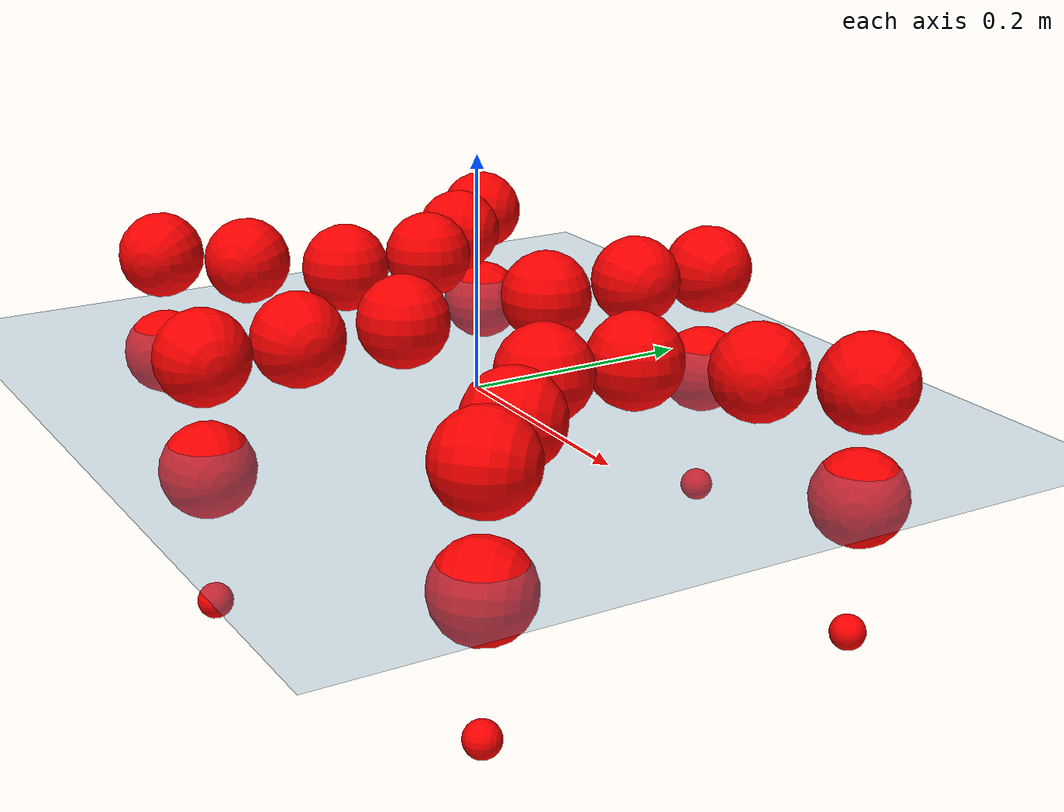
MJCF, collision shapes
<mujoco model="Golem">
  <compiler angle="radian" assetdir="assets" balanceinertia="true" inertiafromgeom="false"/>

  <option timestep="0.005" density="1.2" viscosity="2e-05"/>

  <size nkey="1"/>

  <visual>
    <quality shadowsize="8192"/>
    <map shadowclip="0.5"/>
  </visual>

  <default>
    <default class="/">
      <joint armature="0.01" damping="0.01" frictionloss="0.01"/>
      <geom contype="0" conaffinity="0" group="1" solref="-1000 -80"/>
      <site size="0.01 0.005 0.005" group="5"/>
      <general forcelimited="true" biastype="affine" gainprm="25" biasprm="0 -25 -0.5"/>
      <default class="visual">
        <geom type="mesh" group="2"/>
      </default>
      <default class="collision">
        <geom group="3"/>
      </default>
      <default class="foot">
        <geom size="0.01 0 0" condim="6" group="4" priority="1" solimp="0.015 1 0.01"/>
      </default>
      <default class="reward_collision_sphere">
        <geom group="5" rgba="1 0 0 1"/>
      </default>
    </default>
  </default>

  <asset>
    <texture type="skybox" colorspace="auto" name="//unnamed_texture_0" builtin="gradient" rgb1="0.95 0.95 0.95" rgb2="0.95 0.95 0.95" width="100" height="600"/>
    <texture type="2d" colorspace="auto" name="texplane" builtin="checker" rgb1="0.345 0.575 0.748" rgb2="0.345 0.575 0.748" markrgb="1 1 1" width="512" height="512"/>
    <material name="MatPlane" class="/" texture="texplane" texuniform="true" texrepeat="2 2" specular="0.9"/>
    <mesh name="body" class="/" file="body.stl" scale="0.001 0.001 0.001"/>
    <mesh name="coxa" class="/" file="coxa.stl" scale="0.001 0.001 0.001"/>
    <mesh name="femur" class="/" file="femur.stl" scale="0.001 0.001 0.001"/>
    <mesh name="tibia" class="/" file="tibia.stl" scale="0.001 0.001 0.001"/>
    <mesh name="tarsus" class="/" file="tarsus.stl" scale="0.001 0.001 0.001"/>
  </asset>

  <worldbody>
    <geom name="floor" class="/" size="100 100 0.125" type="plane" group="0" material="MatPlane"/>
    <light name="toplight_shadow" class="/" pos="0 0 5" dir="0.0990148 0.0990148 -0.990148" type="directional" ambient="0.04 0.04 0.04" diffuse="0.55 0.55 0.55" specular="0.12 0.12 0.12"/>
    <light name="toplight_fill" class="/" pos="0 0 5" dir="0.0990148 0.0990148 -0.990148" type="directional" castshadow="false" ambient="0.04 0.04 0.04" diffuse="0.3 0.3 0.3" specular="0.08 0.08 0.08"/>
    <body name="trunk" pos="0.00157141 -0.000586941 -0.000794785" quat="1 -5.06064e-06 4.22094e-05 -7.42362e-06">
      <inertial pos="6.61304e-05 -1.7462e-06 -0.00319603" quat="0.999999 -0.000457191 -0.00129807 -0.000374178" mass="3.37857" diaginertia="0.0138782 0.00245218 0.0163295"/>
      <joint name="//unnamed_joint_0" type="free"/>
      <geom name="//unnamed_geom_1" class="/" pos="0 0 0.0706781" quat="1 0 0 0" type="mesh" rgba="0.9 0.9 0.9 1" mesh="body"/>
      <site name="imu" class="/" pos="0.145219 0.00524707 0.107329" size="0.00977686"/>
      <camera name="track" class="/" pos="0 -1.51852 0" quat="0.707107 0.707107 0 0" mode="trackcom"/>
      <camera name="ego_camera" class="/" pos="0.139029 0 0.110434" quat="-0.5 -0.5 0.5 0.5"/>
      <body name="coxa_RR" pos="-0.19106 -0.0635515 0.0701596" quat="0.382653 0.00034893 2.36785e-05 -0.923892">
        <inertial pos="3.34775e-06 -0.00174272 0.00157199" quat="1 -6.98594e-07 -5.28921e-06 -1.2257e-06" mass="0.183115" diaginertia="0.0140359 0.00252827 0.0164018"/>
        <joint name="coxa_joint_RR" class="/" pos="0 0 0" axis="-0.00183981 -0.00682896 -0.999975" range="-3.13899 3.14184" armature="0.00942386" damping="0" frictionloss="0.0098149"/>
        <geom name="//unnamed_geom_2" class="/" type="mesh" rgba="0.2 0.2 0.2 1" mesh="coxa"/>
        <geom name="//unnamed_geom_3" class="reward_collision_sphere" size="0.0391074" pos="-0.0320835 0 0"/>
        <body name="femur_RR" pos="0.0625248 0.000717094 -0.000537423" quat="0.500012 -0.49991 0.499938 0.500141">
          <inertial pos="0.000954105 0.000861324 0.00031237" quat="0.999994 0.000717153 -0.00275733 -0.00190087" mass="0.187125" diaginertia="0.0139919 0.00250654 0.0168528"/>
          <joint name="femur_joint_RR" class="/" pos="0 0 0" axis="-0.00169704 0.00334505 -0.999993" range="-3.15943 3.14003" armature="0.00996932" damping="0" frictionloss="0.0101369"/>
          <geom name="//unnamed_geom_4" class="/" type="mesh" rgba="0.9 0.9 0.9 1" mesh="femur"/>
          <geom name="//unnamed_geom_5" class="reward_collision_sphere" size="0.0391074"/>
          <body name="tibia_RR" pos="2.5695e-05 -0.0843359 0.00217889" quat="0.000408899 1 -0.000275904 -0.000584954">
            <inertial pos="-0.000939623 0.000262511 0.000143114" quat="0.999999 -0.000895313 0.00064459 0.00113083" mass="0.189164" diaginertia="0.0139995 0.00255577 0.0166282"/>
            <joint name="tibia_joint_RR" class="/" pos="0 0 0" axis="7.95972e-05 0.00326534 0.999995" range="-3.15907 3.12881" armature="0.00959885" damping="0.00319357" frictionloss="0.00979336"/>
            <geom name="//unnamed_geom_6" class="/" type="mesh" rgba="0.2 0.2 0.2 1" mesh="tibia"/>
            <geom name="//unnamed_geom_7" class="reward_collision_sphere" size="0.0391074"/>
            <body name="tarsus_RR" pos="0.094461 0.0013635 0.000757128" quat="1 1.36901e-05 2.04523e-08 4.04304e-07">
              <inertial pos="0.0663334 0.000406986 -0.00100187" quat="0.499579 0.499812 0.501403 0.499203" mass="0.186043" diaginertia="0.0138637 0.0024841 0.0162841"/>
              <joint name="tarsus_joint_RR" class="/" pos="0 0 0" axis="0.00621621 -0.00498661 0.999968" stiffness="0.00240782" range="-3.15702 3.13166" armature="0.0100044" damping="0.0394095" frictionloss="0.0102351"/>
              <geom name="//unnamed_geom_8" class="/" type="mesh" rgba="0.9 0.9 0.9 1" mesh="tarsus"/>
              <geom name="foot_1" class="foot" size="0.00963176" pos="0.119779 0 0" quat="0 -0.707107 0 0.707107"/>
              <geom name="//unnamed_geom_10" class="reward_collision_sphere" size="0.0391074"/>
              <geom name="//unnamed_geom_11" class="reward_collision_sphere" size="0.0146653" pos="0.114966 0 0"/>
              <site name="foot_1" class="foot" pos="0.119779 0 0" quat="0 -0.707107 0 0.707107" size="0.00977686"/>
            </body>
          </body>
        </body>
      </body>
      <body name="coxa_RM" pos="-0.000373222 -0.101744 0.0707654" quat="0.70709 0.000167304 9.70825e-05 -0.707124">
        <inertial pos="0.000297254 0.000114578 0.00165817" quat="0.999988 0.00223745 0.00235429 0.00362688" mass="0.189541" diaginertia="0.0141584 0.0024739 0.0164114"/>
        <joint name="coxa_joint_RM" class="/" pos="0 0 0" axis="-0.00320424 -0.000363558 -0.999995" range="-3.11954 3.14421" armature="0.00967429" damping="0.00693383" frictionloss="0.00876401"/>
        <geom name="//unnamed_geom_12" class="/" type="mesh" rgba="0.2 0.2 0.2 1" mesh="coxa"/>
        <geom name="//unnamed_geom_13" class="reward_collision_sphere" size="0.0391074" pos="-0.0320835 0 0"/>
        <body name="femur_RM" pos="0.0619233 7.24497e-05 2.14275e-05" quat="0.500285 -0.499736 0.500402 0.499577">
          <inertial pos="-0.000177573 0.000788398 0.000158799" quat="0.99999 -0.000877155 -0.00305153 0.00305516" mass="0.191485" diaginertia="0.0143132 0.00256067 0.0168055"/>
          <joint name="femur_joint_RM" class="/" pos="0 0 0" axis="-0.00331045 0.000952864 -0.999994" range="-3.1312 3.13916" armature="0.0102514" damping="0.0103208" frictionloss="0.00973575"/>
          <geom name="//unnamed_geom_14" class="/" type="mesh" rgba="0.9 0.9 0.9 1" mesh="femur"/>
          <geom name="//unnamed_geom_15" class="reward_collision_sphere" size="0.0391074"/>
          <body name="tibia_RM" pos="0.00076534 -0.0810494 0.00116011" quat="-8.95649e-05 1 -9.11511e-05 -5.87571e-05">
            <inertial pos="-6.96913e-05 -0.00190763 -0.00025654" quat="0.999984 0.00257137 -0.00501451 0.000253665" mass="0.186685" diaginertia="0.0141954 0.00261098 0.0165305"/>
            <joint name="tibia_joint_RM" class="/" pos="0 0 0" axis="-0.000979817 -0.000372733 0.999999" range="-3.16253 3.18001" armature="0.00972057" damping="0.0122237" frictionloss="0.00970291"/>
            <geom name="//unnamed_geom_16" class="/" type="mesh" rgba="0.2 0.2 0.2 1" mesh="tibia"/>
            <geom name="//unnamed_geom_17" class="reward_collision_sphere" size="0.0391074"/>
            <body name="tarsus_RM" pos="0.0936366 0.000283375 0.000290066" quat="1 0.000106992 -9.40282e-05 -2.98691e-05">
              <inertial pos="0.0638397 0.000752039 0.000580524" quat="0.497928 0.503028 0.494131 0.504841" mass="0.190667" diaginertia="0.0138006 0.00253947 0.016326"/>
              <joint name="tarsus_joint_RM" class="/" pos="0 0 0" axis="0.000420669 -0.000109164 1" range="-3.1469 3.14871" armature="0.00928724" damping="0.00626648" frictionloss="0.00978478"/>
              <geom name="//unnamed_geom_18" class="/" type="mesh" rgba="0.9 0.9 0.9 1" mesh="tarsus"/>
              <geom name="foot_2" class="foot" size="0.00962297" pos="0.119779 0 0" quat="0 -0.707107 0 0.707107"/>
              <geom name="//unnamed_geom_20" class="reward_collision_sphere" size="0.0391074"/>
              <geom name="//unnamed_geom_21" class="reward_collision_sphere" size="0.0146653" pos="0.114966 0 0"/>
              <site name="foot_2" class="foot" pos="0.119779 0 0" quat="0 -0.707107 0 0.707107" size="0.00977686"/>
            </body>
          </body>
        </body>
      </body>
      <body name="coxa_RF" pos="0.190964 -0.0615229 0.0725157" quat="0.923977 -0.000209537 0.000131479 -0.382448">
        <inertial pos="0.000746215 -0.000788539 -3.07566e-05" quat="1 6.80329e-06 -3.94259e-05 6.95065e-05" mass="0.188005" diaginertia="0.0139752 0.00250783 0.0167206"/>
        <joint name="coxa_joint_RF" class="/" pos="0 0 0" axis="-0.00386111 0.00308389 -0.999988" range="-3.14348 3.13253" armature="0.0101678" damping="0.0130758" frictionloss="0.00987648"/>
        <geom name="//unnamed_geom_22" class="/" type="mesh" rgba="0.2 0.2 0.2 1" mesh="coxa"/>
        <geom name="//unnamed_geom_23" class="reward_collision_sphere" size="0.0391074" pos="-0.0320835 0 0"/>
        <body name="femur_RF" pos="0.0629644 0.000478739 -0.00182504" quat="0.500338 -0.499934 0.499852 0.499875">
          <inertial pos="-0.000852597 0.00011825 -0.000180126" quat="0.999988 -0.0034538 -0.000959056 0.0034118" mass="0.189038" diaginertia="0.0139873 0.00256912 0.0168965"/>
          <joint name="femur_joint_RF" class="/" pos="0 0 0" axis="0.000333833 1.85918e-06 -1" range="-3.17298 3.12363" armature="0.00930353" damping="0.0121622" frictionloss="0.00996846"/>
          <geom name="//unnamed_geom_24" class="/" type="mesh" rgba="0.9 0.9 0.9 1" mesh="femur"/>
          <geom name="//unnamed_geom_25" class="reward_collision_sphere" size="0.0391074"/>
          <body name="tibia_RF" pos="-0.00100651 -0.0825495 0.00158488" quat="3.755e-05 1 3.52356e-05 -1.75822e-05">
            <inertial pos="-0.00175378 0.000275585 7.52455e-05" quat="1 3.73161e-06 -1.8057e-06 3.93872e-06" mass="0.189985" diaginertia="0.0140886 0.00250902 0.0164484"/>
            <joint name="tibia_joint_RF" class="/" pos="0 0 0" axis="0.00672199 0.00134169 0.999977" range="-3.13179 3.10343" armature="0.0101798" damping="0.0113592" frictionloss="0.00981937"/>
            <geom name="//unnamed_geom_26" class="/" type="mesh" rgba="0.2 0.2 0.2 1" mesh="tibia"/>
            <geom name="//unnamed_geom_27" class="reward_collision_sphere" size="0.0391074"/>
            <body name="tarsus_RF" pos="0.0937017 0.0012368 0.00114415" quat="1 -0.000646843 -0.000147714 0.00042896">
              <inertial pos="0.0642801 0.000161603 -0.000208984" quat="0.499744 0.500767 0.499625 0.499864" mass="0.185507" diaginertia="0.0140053 0.00251525 0.0162624"/>
              <joint name="tarsus_joint_RF" class="/" pos="0 0 0" axis="-0.00164046 7.72563e-05 0.999999" range="-3.12027 3.14401" armature="0.00950422" damping="0.000351224" frictionloss="0.0102067"/>
              <geom name="//unnamed_geom_28" class="/" type="mesh" rgba="0.9 0.9 0.9 1" mesh="tarsus"/>
              <geom name="foot_3" class="foot" size="0.0098385" pos="0.119779 0 0" quat="0 -0.707107 0 0.707107"/>
              <geom name="//unnamed_geom_30" class="reward_collision_sphere" size="0.0391074"/>
              <geom name="//unnamed_geom_31" class="reward_collision_sphere" size="0.0146653" pos="0.114966 0 0"/>
              <site name="foot_3" class="foot" pos="0.119779 0 0" quat="0 -0.707107 0 0.707107" size="0.00977686"/>
            </body>
          </body>
        </body>
      </body>
      <body name="coxa_LR" pos="-0.191332 0.0660462 0.0703707" quat="0.382609 3.32886e-05 -3.75393e-05 0.92391">
        <inertial pos="-0.00121535 -0.0011381 -0.00128432" quat="0.999963 0.00281502 -0.00104254 0.00811456" mass="0.187454" diaginertia="0.0139511 0.00258996 0.0162869"/>
        <joint name="coxa_joint_LR" class="/" pos="0 0 0" axis="0.00813022 -0.00708074 -0.999942" range="-3.12882 3.15509" armature="0.0100779" damping="0.0152057" frictionloss="0.00951277"/>
        <geom name="//unnamed_geom_32" class="/" type="mesh" rgba="0.2 0.2 0.2 1" mesh="coxa"/>
        <geom name="//unnamed_geom_33" class="reward_collision_sphere" size="0.0391074" pos="-0.0320835 0 0"/>
        <body name="femur_LR" pos="0.0645756 -0.00200683 -0.0015874" quat="0.500144 -0.499828 0.500038 0.49999">
          <inertial pos="0.000705444 0.000291536 -0.000334178" quat="0.999993 0.00256262 -0.00191036 0.00185929" mass="0.186844" diaginertia="0.0139323 0.00253154 0.0162955"/>
          <joint name="femur_joint_LR" class="/" pos="0 0 0" axis="0.000287088 -0.000855502 1" range="-3.15253 3.13463" armature="0.00978771" damping="0.0122293" frictionloss="0.00886246"/>
          <geom name="//unnamed_geom_34" class="/" type="mesh" rgba="0.9 0.9 0.9 1" mesh="femur"/>
          <geom name="//unnamed_geom_35" class="reward_collision_sphere" size="0.0391074"/>
          <body name="tibia_LR" pos="0.000208693 -0.0818431 -0.000569803" quat="0.0006315 1 0.000222679 3.33639e-07">
            <inertial pos="-0.000181357 0.000140899 5.94801e-05" quat="0.999998 -0.00141992 -0.00057959 0.00118469" mass="0.182986" diaginertia="0.0138322 0.0025127 0.0161328"/>
            <joint name="tibia_joint_LR" class="/" pos="0 0 0" axis="-0.00123665 0.00608372 -0.999981" stiffness="0.000881573" range="-3.12252 3.12893" armature="0.00962835" damping="0.00815541" frictionloss="0.00991913"/>
            <geom name="//unnamed_geom_36" class="/" type="mesh" rgba="0.2 0.2 0.2 1" mesh="tibia"/>
            <geom name="//unnamed_geom_37" class="reward_collision_sphere" size="0.0391074"/>
            <body name="tarsus_LR" pos="0.0938542 -0.000546303 0.00190957" quat="1 0.000332729 0.000743656 -4.82367e-05">
              <inertial pos="0.0667395 0.000140591 -0.00168435" quat="0.500148 0.49939 0.499786 0.500675" mass="0.185981" diaginertia="0.0138932 0.00249594 0.0162114"/>
              <joint name="tarsus_joint_LR" class="/" pos="0 0 0" axis="-0.00165233 -0.000533029 -0.999998" range="-3.15518 3.12265" armature="0.0100095" damping="0.000213823" frictionloss="0.00934859"/>
              <geom name="//unnamed_geom_38" class="/" type="mesh" rgba="0.9 0.9 0.9 1" mesh="tarsus"/>
              <geom name="foot_4" class="foot" size="0.00940217" pos="0.119779 0 0" quat="0.707107 0 -0.707107 0"/>
              <geom name="//unnamed_geom_40" class="reward_collision_sphere" size="0.0391074"/>
              <geom name="//unnamed_geom_41" class="reward_collision_sphere" size="0.0146653" pos="0.114966 0 0"/>
              <site name="foot_4" class="foot" pos="0.119779 0 0" quat="0.707107 0 -0.707107 0" size="0.00977686"/>
            </body>
          </body>
        </body>
      </body>
      <body name="coxa_LM" pos="-0.000109725 0.0993309 0.0717308" quat="0.706948 -0.000182316 7.18446e-05 0.707266">
        <inertial pos="-0.000270939 0.000900418 0.00121082" quat="0.999999 -0.00158931 0.000624591 -1.11465e-05" mass="0.189021" diaginertia="0.0142828 0.00256839 0.0166354"/>
        <joint name="coxa_joint_LM" class="/" pos="0 0 0" axis="0.000990658 0.000231086 -0.999999" range="-3.12347 3.14251" armature="0.00932091" damping="0.00451067" frictionloss="0.0100236"/>
        <geom name="//unnamed_geom_42" class="/" type="mesh" rgba="0.2 0.2 0.2 1" mesh="coxa"/>
        <geom name="//unnamed_geom_43" class="reward_collision_sphere" size="0.0391074" pos="-0.0320835 0 0"/>
        <body name="femur_LM" pos="0.0604918 0.000600326 0.00034187" quat="0.500146 -0.499959 0.499924 0.499971">
          <inertial pos="-0.00105965 -0.000959036 0.00193007" quat="0.99997 -0.00670347 0.00372918 0.000887701" mass="0.185792" diaginertia="0.0137608 0.00244398 0.0161363"/>
          <joint name="femur_joint_LM" class="/" pos="0 0 0" axis="-0.00179882 -0.000457397 0.999998" range="-3.14253 3.12802" armature="0.00948244" damping="0.00432964" frictionloss="0.00987975"/>
          <geom name="//unnamed_geom_44" class="/" type="mesh" rgba="0.9 0.9 0.9 1" mesh="femur"/>
          <geom name="//unnamed_geom_45" class="reward_collision_sphere" size="0.0391074"/>
          <body name="tibia_LM" pos="0.00111213 -0.0785868 -0.000320312" quat="0.000821988 0.999999 5.15203e-05 -0.000627726">
            <inertial pos="5.67379e-06 -0.00265249 -0.000829139" quat="0.999999 -0.000503076 -0.000478206 -0.00117084" mass="0.188902" diaginertia="0.0138346 0.00255787 0.0162461"/>
            <joint name="tibia_joint_LM" class="/" pos="0 0 0" axis="0.00053349 -0.000537886 -1" range="-3.13855 3.12596" armature="0.0103179" damping="0" frictionloss="0.0101715"/>
            <geom name="//unnamed_geom_46" class="/" type="mesh" rgba="0.2 0.2 0.2 1" mesh="tibia"/>
            <geom name="//unnamed_geom_47" class="reward_collision_sphere" size="0.0391074"/>
            <body name="tarsus_LM" pos="0.094736 -0.000774976 -0.00107148" quat="1 -0.000399751 0.000851244 -0.000321479">
              <inertial pos="0.0645695 0.00058821 0.000779332" quat="0.499999 0.499997 0.500005 0.499999" mass="0.182092" diaginertia="0.013823 0.00246437 0.0160707"/>
              <joint name="tarsus_joint_LM" class="/" pos="0 0 0" axis="0.00250471 0.000491732 -0.999997" stiffness="0.000733699" range="-3.10104 3.13331" armature="0.0103273" damping="0" frictionloss="0.00929905"/>
              <geom name="//unnamed_geom_48" class="/" type="mesh" rgba="0.9 0.9 0.9 1" mesh="tarsus"/>
              <geom name="foot_5" class="foot" size="0.00946752" pos="0.119779 0 0" quat="0.707107 0 -0.707107 0"/>
              <geom name="//unnamed_geom_50" class="reward_collision_sphere" size="0.0391074"/>
              <geom name="//unnamed_geom_51" class="reward_collision_sphere" size="0.0146653" pos="0.114966 0 0"/>
              <site name="foot_5" class="foot" pos="0.119779 0 0" quat="0.707107 0 -0.707107 0" size="0.00977686"/>
            </body>
          </body>
        </body>
      </body>
      <body name="coxa_LF" pos="0.192123 0.0652561 0.0689378" quat="0.923869 -8.52395e-05 -0.000131229 0.382708">
        <inertial pos="0.000147908 0.000311149 0.00130494" quat="1 -0.000273688 0.000168486 -0.000349512" mass="0.184512" diaginertia="0.0137144 0.00247019 0.015983"/>
        <joint name="coxa_joint_LF" class="/" pos="0 0 0" axis="-0.00325199 0.00364807 -0.999988" range="-3.11901 3.17531" armature="0.0102837" damping="0.000665394" frictionloss="0.0098768"/>
        <geom name="//unnamed_geom_52" class="/" type="mesh" rgba="0.2 0.2 0.2 1" mesh="coxa"/>
        <geom name="//unnamed_geom_53" class="reward_collision_sphere" size="0.0391074" pos="-0.0320835 0 0"/>
        <body name="femur_LF" pos="0.063324 -0.000811168 -0.000232885" quat="0.499537 -0.500306 0.499709 0.500447">
          <inertial pos="0.00177177 -0.000109004 2.21312e-05" quat="0.999998 0.00212371 3.52876e-06 0.000358463" mass="0.187641" diaginertia="0.014065 0.00254727 0.0166179"/>
          <joint name="femur_joint_LF" class="/" pos="0 0 0" axis="-0.00154526 -0.00444759 0.999989" range="-3.14834 3.14171" armature="0.0102416" damping="0.00440653" frictionloss="0.00993406"/>
          <geom name="//unnamed_geom_54" class="/" type="mesh" rgba="0.9 0.9 0.9 1" mesh="femur"/>
          <geom name="//unnamed_geom_55" class="reward_collision_sphere" size="0.0391074"/>
          <body name="tibia_LF" pos="0.000962471 -0.0809816 0.000611391" quat="0.00018321 1 4.6225e-05 -0.000309102">
            <inertial pos="-0.00011631 0.000366469 -0.000992224" quat="0.999996 -0.00216839 0.00038681 0.00160915" mass="0.189279" diaginertia="0.0141034 0.00253582 0.0164182"/>
            <joint name="tibia_joint_LF" class="/" pos="0 0 0" axis="-0.00124403 0.000625265 -0.999999" range="-3.14215 3.14513" armature="0.0100265" damping="5.13792e-05" frictionloss="0.00934729"/>
            <geom name="//unnamed_geom_56" class="/" type="mesh" rgba="0.2 0.2 0.2 1" mesh="tibia"/>
            <geom name="//unnamed_geom_57" class="reward_collision_sphere" size="0.0391074"/>
            <body name="tarsus_LF" pos="0.0937947 -0.000209094 -0.000760987" quat="1 0.000422304 0.000316023 -0.000527618">
              <inertial pos="0.064171 0.000571105 0.000994603" quat="0.499738 0.500172 0.499861 0.500228" mass="0.183816" diaginertia="0.0139463 0.00252275 0.0161323"/>
              <joint name="tarsus_joint_LF" class="/" pos="0 0 0" axis="-0.00141193 -0.00541302 -0.999984" stiffness="0.0259328" range="-3.14558 3.11844" armature="0.00972738" damping="0.0281138" frictionloss="0.00964191"/>
              <geom name="//unnamed_geom_58" class="/" type="mesh" rgba="0.9 0.9 0.9 1" mesh="tarsus"/>
              <geom name="foot_6" class="foot" size="0.00991593" pos="0.119779 0 0" quat="0.707107 0 -0.707107 0"/>
              <geom name="//unnamed_geom_60" class="reward_collision_sphere" size="0.0391074"/>
              <geom name="//unnamed_geom_61" class="reward_collision_sphere" size="0.0146653" pos="0.114966 0 0"/>
              <site name="foot_6" class="foot" pos="0.119779 0 0" quat="0.707107 0 -0.707107 0" size="0.00977686"/>
            </body>
          </body>
        </body>
      </body>
    </body>
  </worldbody>

  <contact>
    <pair class="/" geom1="floor" geom2="foot_1" name="//unnamed_contact_0"/>
    <pair class="/" geom1="floor" geom2="foot_2" name="//unnamed_contact_1"/>
    <pair class="/" geom1="floor" geom2="foot_3" name="//unnamed_contact_2"/>
    <pair class="/" geom1="floor" geom2="foot_4" name="//unnamed_contact_3"/>
    <pair class="/" geom1="floor" geom2="foot_5" name="//unnamed_contact_4"/>
    <pair class="/" geom1="floor" geom2="foot_6" name="//unnamed_contact_5"/>
  </contact>

  <actuator>
    <general name="coxa_joint_RR" class="/" joint="coxa_joint_RR" forcerange="-7.27725 7.27725" gainprm="23.5445" biasprm="0 -23.5445 -0.512148"/>
    <general name="femur_joint_RR" class="/" joint="femur_joint_RR" forcerange="-7.1721 7.1721" gainprm="23.5445" biasprm="0 -23.5445 -0.512148"/>
    <general name="tibia_joint_RR" class="/" joint="tibia_joint_RR" forcerange="-7.18167 7.18167" gainprm="23.5445" biasprm="0 -23.5445 -0.512148"/>
    <general name="tarsus_joint_RR" class="/" joint="tarsus_joint_RR" forcerange="-7.21712 7.21712" gainprm="23.5445" biasprm="0 -23.5445 -0.512148"/>
    <general name="coxa_joint_RM" class="/" joint="coxa_joint_RM" forcerange="-6.67532 6.67532" gainprm="23.5445" biasprm="0 -23.5445 -0.512148"/>
    <general name="femur_joint_RM" class="/" joint="femur_joint_RM" forcerange="-7.1136 7.1136" gainprm="23.5445" biasprm="0 -23.5445 -0.512148"/>
    <general name="tibia_joint_RM" class="/" joint="tibia_joint_RM" forcerange="-7.26565 7.26565" gainprm="23.5445" biasprm="0 -23.5445 -0.512148"/>
    <general name="tarsus_joint_RM" class="/" joint="tarsus_joint_RM" forcerange="-7.26236 7.26236" gainprm="23.5445" biasprm="0 -23.5445 -0.512148"/>
    <general name="coxa_joint_RF" class="/" joint="coxa_joint_RF" forcerange="-6.75142 6.75142" gainprm="23.5445" biasprm="0 -23.5445 -0.512148"/>
    <general name="femur_joint_RF" class="/" joint="femur_joint_RF" forcerange="-7.34018 7.34018" gainprm="23.5445" biasprm="0 -23.5445 -0.512148"/>
    <general name="tibia_joint_RF" class="/" joint="tibia_joint_RF" forcerange="-6.63409 6.63409" gainprm="23.5445" biasprm="0 -23.5445 -0.512148"/>
    <general name="tarsus_joint_RF" class="/" joint="tarsus_joint_RF" forcerange="-6.90976 6.90976" gainprm="23.5445" biasprm="0 -23.5445 -0.512148"/>
    <general name="coxa_joint_LR" class="/" joint="coxa_joint_LR" forcerange="-7.13227 7.13227" gainprm="23.5445" biasprm="0 -23.5445 -0.512148"/>
    <general name="femur_joint_LR" class="/" joint="femur_joint_LR" forcerange="-7.1064 7.1064" gainprm="23.5445" biasprm="0 -23.5445 -0.512148"/>
    <general name="tibia_joint_LR" class="/" joint="tibia_joint_LR" forcerange="-7.1742 7.1742" gainprm="23.5445" biasprm="0 -23.5445 -0.512148"/>
    <general name="tarsus_joint_LR" class="/" joint="tarsus_joint_LR" forcerange="-6.90351 6.90351" gainprm="23.5445" biasprm="0 -23.5445 -0.512148"/>
    <general name="coxa_joint_LM" class="/" joint="coxa_joint_LM" forcerange="-7.32356 7.32356" gainprm="23.5445" biasprm="0 -23.5445 -0.512148"/>
    <general name="femur_joint_LM" class="/" joint="femur_joint_LM" forcerange="-7.12367 7.12367" gainprm="23.5445" biasprm="0 -23.5445 -0.512148"/>
    <general name="tibia_joint_LM" class="/" joint="tibia_joint_LM" forcerange="-7.02957 7.02957" gainprm="23.5445" biasprm="0 -23.5445 -0.512148"/>
    <general name="tarsus_joint_LM" class="/" joint="tarsus_joint_LM" forcerange="-7.11812 7.11812" gainprm="23.5445" biasprm="0 -23.5445 -0.512148"/>
    <general name="coxa_joint_LF" class="/" joint="coxa_joint_LF" forcerange="-6.61032 6.61032" gainprm="23.5445" biasprm="0 -23.5445 -0.512148"/>
    <general name="femur_joint_LF" class="/" joint="femur_joint_LF" forcerange="-7.0542 7.0542" gainprm="23.5445" biasprm="0 -23.5445 -0.512148"/>
    <general name="tibia_joint_LF" class="/" joint="tibia_joint_LF" forcerange="-7.11394 7.11394" gainprm="23.5445" biasprm="0 -23.5445 -0.512148"/>
    <general name="tarsus_joint_LF" class="/" joint="tarsus_joint_LF" forcerange="-7.33236 7.33236" gainprm="23.5445" biasprm="0 -23.5445 -0.512148"/>
  </actuator>

  <sensor>
    <gyro site="imu" name="imu_angular_velocity"/>
    <velocimeter site="imu" name="imu_linear_velocity"/>
    <framelinvel objtype="site" objname="foot_1" name="foot_1_global_linear_velocity"/>
    <framelinvel objtype="site" objname="foot_2" name="foot_2_global_linear_velocity"/>
    <framelinvel objtype="site" objname="foot_3" name="foot_3_global_linear_velocity"/>
    <framelinvel objtype="site" objname="foot_4" name="foot_4_global_linear_velocity"/>
    <framelinvel objtype="site" objname="foot_5" name="foot_5_global_linear_velocity"/>
    <framelinvel objtype="site" objname="foot_6" name="foot_6_global_linear_velocity"/>
  </sensor>

  <keyframe>
    <key name="home" qpos="0 0 0.1457 1 0 0 0 0 0 0 0 0 0 0 0 0 0 0 0 0 0 0 0 0 0 0 0 0 0 0 0"/>
  </keyframe>
</mujoco>
